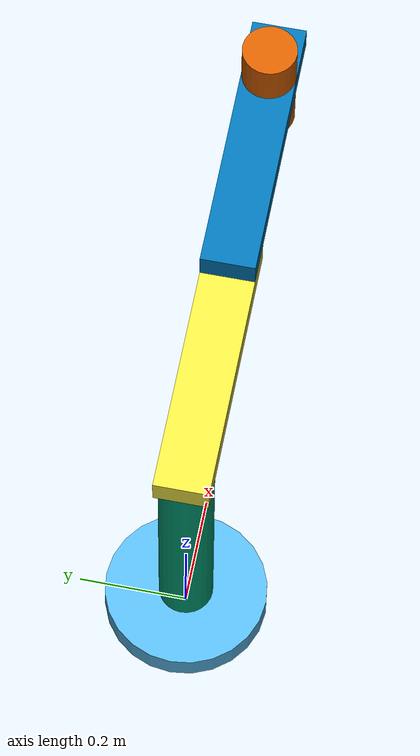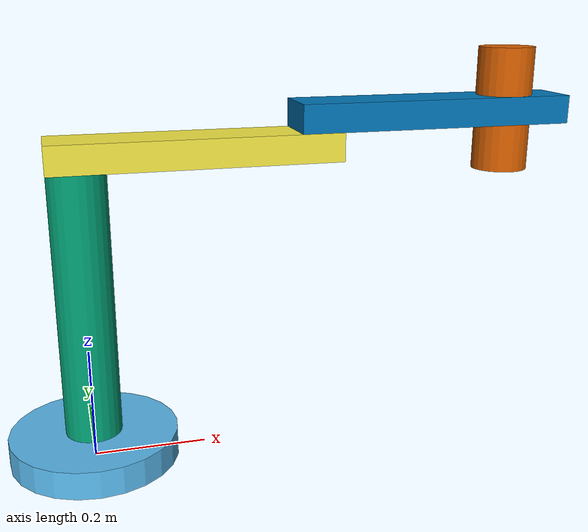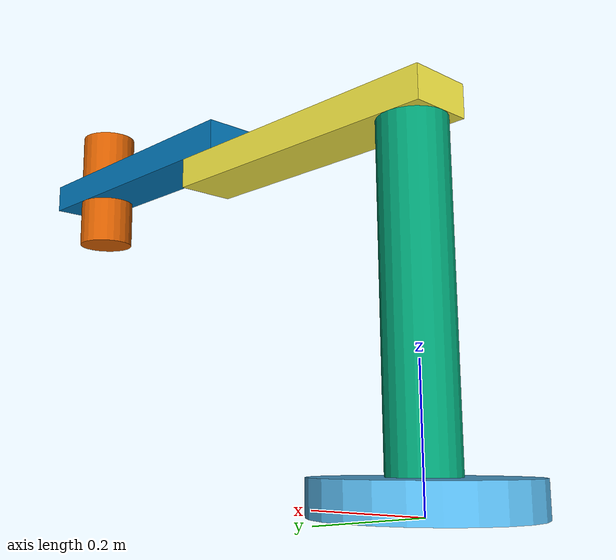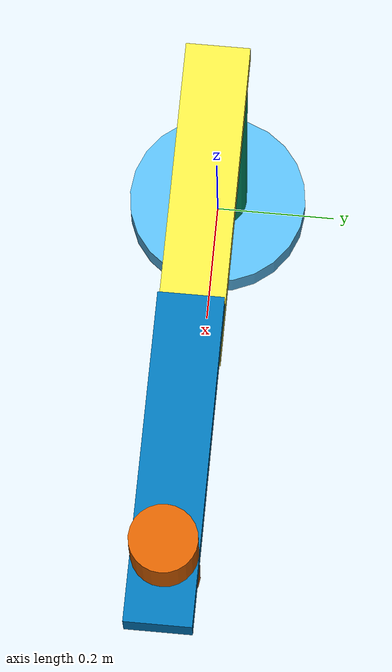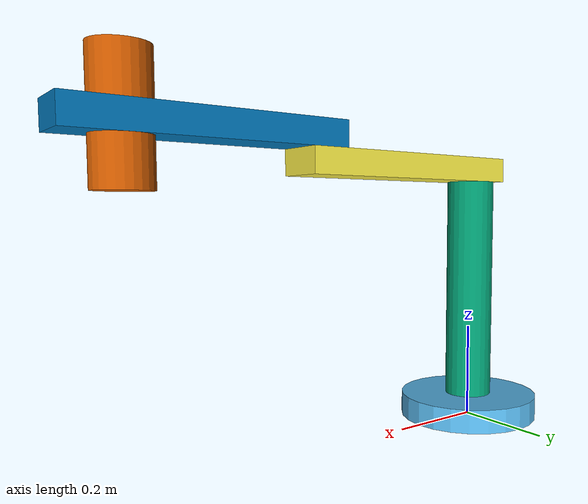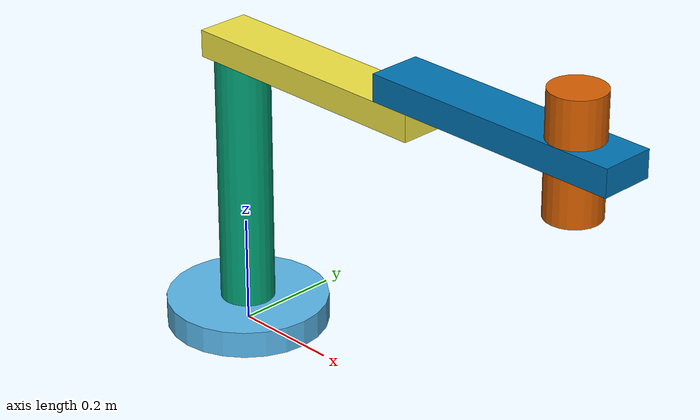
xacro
<robot xmlns:xacro="http://www.ros.org/wiki/xacro">
    <xacro:include filename="inertia.xacro"/>

    <link name="base_footprint"/>

    <link name="base_link">
        <xacro:inertial_cylinder mass="0.1" radius="0.15" length="0.05">
            <origin xyz= "0 0 0.05" />
        </xacro:inertial_cylinder>
        <visual>
            <origin xyz="0.0 0.0 0.025"/>
            <geometry>
                <cylinder radius="0.15" length="0.05"/>/>
            </geometry>
        </visual>
        <collision>
            <origin xyz="0.0 0.0 0.025"/>
            <geometry>
                <cylinder radius="0.15" length="0.05"/>/>
            </geometry>
        </collision>
    </link>

    <joint name= "base_joint" type= "fixed">
        <parent link="base_footprint"/>
        <child link="base_link"/>
        <origin xyz="0.0 0.0 0.0" rpy="0.0 0.0 0.0"/>
        <axis xyz="0 0 0"/>
    </joint>

    <link name="link1">
        <xacro:inertial_cylinder mass="0.05" radius="0.05" length="0.475">
            <origin xyz= "0 0 0" rpy="0 0 0" />
        </xacro:inertial_cylinder>
        <visual>
            <origin xyz="0 0 0.0"/>
            <geometry>
                <cylinder radius="0.05" length="0.475"/>
            </geometry>
        </visual>
        <collision>
            <origin xyz="0 0 0.0"/>
            <geometry>
                <cylinder radius="0.05" length="0.475"/>
            </geometry>
        </collision>
    </link>

    <joint name= "link1_joint" type= "fixed">
        <parent link="base_link"/>
        <child link="link1"/>
        <origin xyz="0.0 0.0 0.2875"/>
        <axis xyz="0 0 0"/>
    </joint>

    <link name="link2">
        <xacro:inertial_box mass="0.5" x="0.5" y="0.1" z="0.1">
            <origin xyz= "0.2 0 0.0" />
        </xacro:inertial_box>
        <visual name="">
            <origin xyz="0.2 0.0 0.0"/>
            <geometry>
                <box size="0.5 0.1 0.05"/>
            </geometry>
        </visual>
        <collision>
            <origin xyz="0.2 0.0 0.0"/>
            <geometry>
                <box size="0.5 0.1 0.05"/>
            </geometry>
        </collision>
    </link>

    <joint name="link2_joint" type="revolute">
        <parent link="base_link"/>
        <child link="link2"/>
        <origin xyz="0.0 0.0 0.55" rpy="0.0 0.0 0.0"/>
        <axis xyz="0 0 1"/>
        <limit lower="-1.5708" upper="1.5708" effort="0" velocity="0"/>
    </joint>

    <link name="link3">
        <xacro:inertial_box mass="0.5" x="0.5" y="0.1" z="0.1">
            <origin xyz= "0.15 0 0.075" rpy="0 0 0" />
        </xacro:inertial_box>
        <visual name="">
            <origin xyz="0.2 0.0 0.0"/>
            <geometry>
                <box size="0.5 0.1 0.05"/>
            </geometry>
        </visual>
        <collision>
            <origin xyz="0.2 0.0 0.0"/>
            <geometry>
                <box size="0.5 0.1 0.05"/>
            </geometry>
        </collision>
    </link>

    <joint name="link3_joint" type="revolute">
        <parent link="link2"/>
        <child link="link3"/>
        <origin xyz="0.425 0.0 0.05" />
        <axis xyz="0 0 1"/>
        <limit lower="-1.5708" upper="1.5708" effort="0" velocity="0"/>
    </joint>

    <link name="effector">
        <xacro:inertial_cylinder mass="0.1" radius="0.05" length="0.22">
            <origin xyz= "0 0 0" rpy="0 0 0" />
        </xacro:inertial_cylinder>
        <visual>
            <origin xyz="0.0 0.0 0.11"/>
            <geometry>
                <cylinder radius="0.05" length="0.22"/>
            </geometry>
        </visual>
        <collision>
            <origin xyz="0.0 0.0 0.11"/>
            <geometry>
                <cylinder radius="0.05" length="0.22"/>
            </geometry>
        </collision>
    </link>

    <joint name="effector_prismatic_joint" type="prismatic">
        <parent link="link3"/>
        <child link="effector"/>
        <origin xyz="0.345 0.0 -0.110" />
        <axis xyz="0 0 -1"/>
        <limit lower="0.0" upper="0.1" effort="0" velocity="0"/>
    </joint>
</robot>
